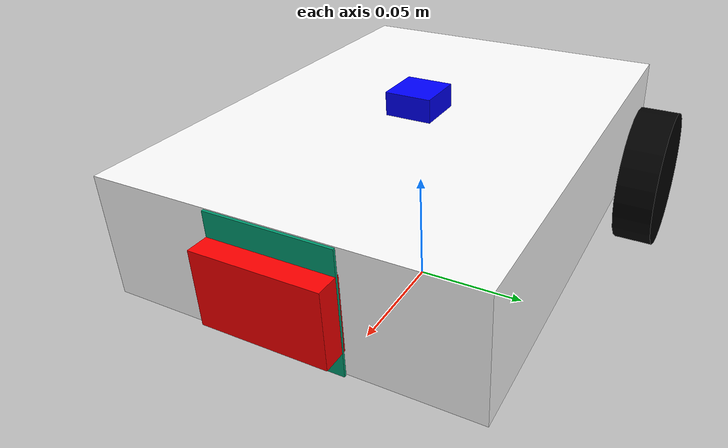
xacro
<?xml version="1.0"?>
<robot xmlns:xacro="http://www.ros.org/wiki/xacro">
  <xacro:property name="chassis_length" value="0.2"/>
  <xacro:property name="chassis_width" value="0.15"/>
  <xacro:property name="chassis_height" value="0.05"/>
  <xacro:property name="wheel_radius" value="0.033"/>
  <xacro:property name="wheel_width" value="0.018"/>
  <xacro:property name="wheel_ygap" value="0.01"/>
  <xacro:property name="wheel_zoff" value="0.0"/>
  <xacro:property name="wheel_xoff" value="0.08"/>
  <xacro:property name="caster_xoff" value="0.06"/>
  <xacro:property name="chassis_mass" value="0.5"/>
  <xacro:property name="wheel_mass" value="0.1"/>
  <xacro:property name="caster_mass" value="0.05"/>

  <material name="white"><color rgba="1 1 1 1"/></material>
  <material name="black"><color rgba="0 0 0 1"/></material>
  <material name="blue"><color rgba="0 0 1 1"/></material>
  <material name="red"><color rgba="1 0 0 1"/></material>
  <material name="green"><color rgba="0 1 0 1"/></material>
  <material name="gray"><color rgba="0.5 0.5 0.5 1"/></material>

  <link name="base_footprint"/>

  <joint name="base_joint" type="fixed">
    <parent link="base_footprint"/>
    <child link="base_link"/>
    <origin xyz="0 0 ${wheel_radius}" rpy="0 0 0"/>
  </joint>

  <link name="base_link">
    <visual>
      <origin xyz="0 0 ${chassis_height/2}"/>
      <geometry><box size="${chassis_length} ${chassis_width} ${chassis_height}"/></geometry>
      <material name="white"/>
    </visual>
    <collision>
      <origin xyz="0 0 ${chassis_height/2}"/>
      <geometry><box size="${chassis_length} ${chassis_width} ${chassis_height}"/></geometry>
    </collision>
    <inertial>
      <origin xyz="0 0 ${chassis_height/2}"/>
      <mass value="${chassis_mass}"/>
      <inertia ixx="${chassis_mass*(chassis_width**2 + chassis_height**2)/12}" ixy="0" ixz="0"
               iyy="${chassis_mass*(chassis_length**2 + chassis_height**2)/12}" iyz="0"
               izz="${chassis_mass*(chassis_length**2 + chassis_width**2)/12}"/>
    </inertial>
  </link>

  <!-- VISIBLE ARUCO MARKER ON FRONT -->
  <link name="aruco_marker_link">
    <visual>
      <origin xyz="0 0 0" rpy="0 0 0"/>
      <geometry><box size="0.001 0.05 0.05"/></geometry>
      <material name="aruco_mat_${bot_marker_id}">
        <script>
          <uri>package://dna_swarm_bot/description/materials/scripts</uri>
          <uri>package://dna_swarm_bot/description/textures</uri>
          <name>ArucoMarker/Bot${bot_marker_id}</name>
        </script>
      </material>
    </visual>
    <collision>
      <origin xyz="0 0 0"/>
      <geometry><box size="0.001 0.05 0.05"/></geometry>
    </collision>
  </link>

  <joint name="aruco_marker_joint" type="fixed">
    <parent link="base_link"/>
    <child link="aruco_marker_link"/>
    <origin xyz="${chassis_length/2 + 0.001} 0 ${chassis_height/2}" rpy="0 0 0"/>
  </joint>

  <xacro:macro name="wheel" params="prefix x_reflect y_reflect">
    <link name="${prefix}_wheel">
      <visual>
        <origin xyz="0 0 0" rpy="${pi/2} 0 0"/>
        <geometry><cylinder radius="${wheel_radius}" length="${wheel_width}"/></geometry>
        <material name="black"/>
      </visual>
      <collision>
        <origin xyz="0 0 0" rpy="${pi/2} 0 0"/>
        <geometry><cylinder radius="${wheel_radius}" length="${wheel_width}"/></geometry>
      </collision>
      <inertial>
        <origin xyz="0 0 0" rpy="${pi/2} 0 0"/>
        <mass value="${wheel_mass}"/>
        <inertia ixx="${wheel_mass*(3*wheel_radius**2 + wheel_width**2)/12}" ixy="0" ixz="0"
                 iyy="${wheel_mass*(3*wheel_radius**2 + wheel_width**2)/12}" iyz="0"
                 izz="${wheel_mass*wheel_radius**2/2}"/>
      </inertial>
    </link>
    <joint name="${prefix}_wheel_joint" type="continuous">
      <parent link="base_link"/>
      <child link="${prefix}_wheel"/>
      <origin xyz="${x_reflect*wheel_xoff} ${y_reflect*(chassis_width/2+wheel_ygap)} ${wheel_zoff}" rpy="0 0 0"/>
      <axis xyz="0 1 0"/>
    </joint>
  </xacro:macro>

  <xacro:wheel prefix="left" x_reflect="-1" y_reflect="1"/>
  <xacro:wheel prefix="right" x_reflect="-1" y_reflect="-1"/>

  <link name="caster_wheel">
    <visual><geometry><sphere radius="0.02"/></geometry><material name="black"/></visual>
    <collision><geometry><sphere radius="0.02"/></geometry></collision>
    <inertial>
      <mass value="${caster_mass}"/>
      <inertia ixx="${2*caster_mass*0.02**2/5}" ixy="0" ixz="0"
               iyy="${2*caster_mass*0.02**2/5}" iyz="0"
               izz="${2*caster_mass*0.02**2/5}"/>
    </inertial>
  </link>
  <joint name="caster_wheel_joint" type="fixed">
    <parent link="base_link"/>
    <child link="caster_wheel"/>
    <origin xyz="${caster_xoff} 0 ${-wheel_radius+0.02}" rpy="0 0 0"/>
  </joint>

  <link name="imu_link">
    <visual><geometry><box size="0.02 0.02 0.01"/></geometry><material name="blue"/></visual>
  </link>
  <joint name="imu_joint" type="fixed">
    <parent link="base_link"/>
    <child link="imu_link"/>
    <origin xyz="0 0 ${chassis_height+0.005}" rpy="0 0 0"/>
  </joint>

  <link name="face_link">
    <visual><geometry><box size="0.01 0.05 0.03"/></geometry><material name="red"/></visual>
  </link>
  <joint name="face_joint" type="fixed">
    <parent link="base_link"/>
    <child link="face_link"/>
    <origin xyz="${chassis_length/2+0.005} 0 ${chassis_height/2}" rpy="0 0 0"/>
  </joint>
</robot>
